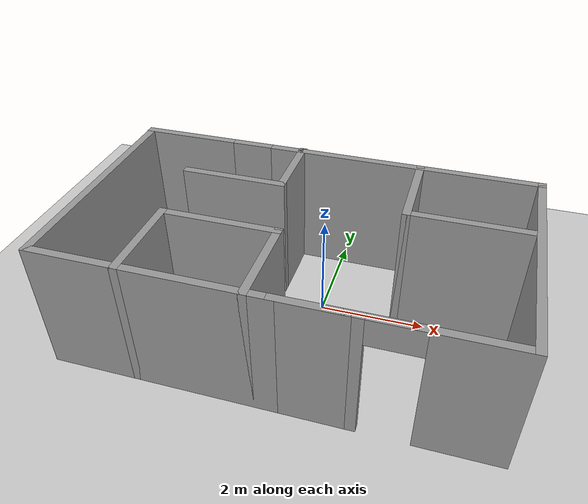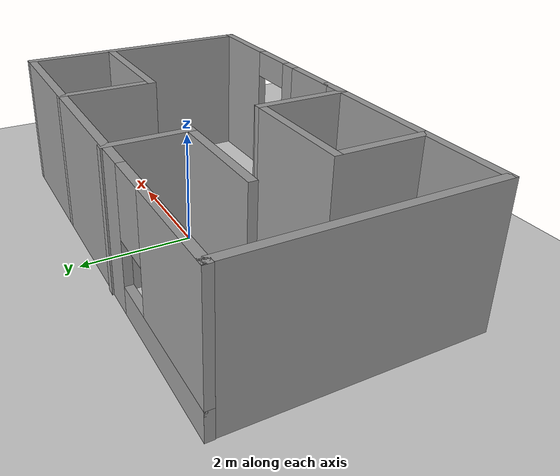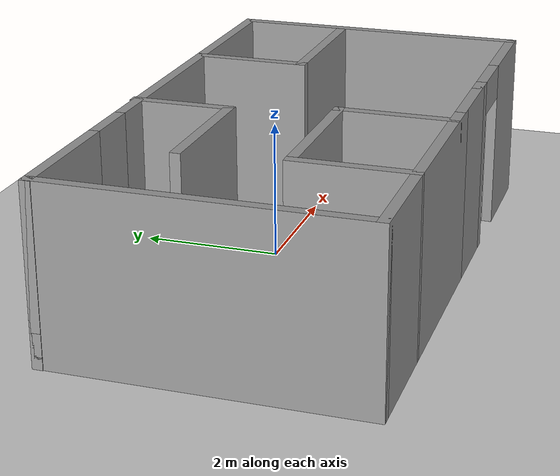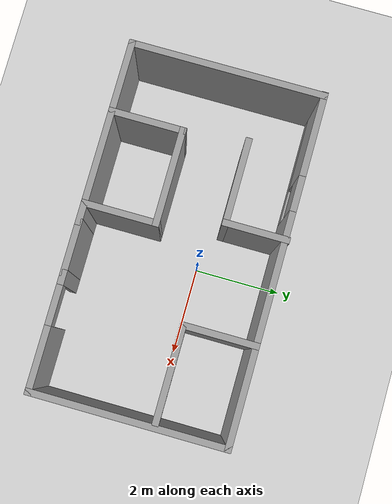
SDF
<sdf version="1.7">
 <world name="default">
  <light name="sun" type="directional">
   <pose>0 0 10 0 -0 0</pose>
   <diffuse>0.8 0.8 0.8 1</diffuse>
   <specular>0.2 0.2 0.2 1</specular>
   <attenuation>
    <range>1000</range>
    <constant>0.9</constant>
    <linear>0.01</linear>
    <quadratic>0.001</quadratic>
   </attenuation>
   <direction>-0.5 0.1 -0.9</direction>
   <spot><inner_angle>0</inner_angle><outer_angle>0</outer_angle><falloff>0</falloff></spot>
  </light>
  <model name="ground_plane">
   <static>1</static>
   <link name="link">
    <collision name="collision">
     <geometry><plane><normal>0 0 1</normal><size>100 100</size></plane></geometry>
     <surface><friction><ode><mu>100</mu><mu2>50</mu2></ode></friction></surface>
    </collision>
    <visual name="visual">
     <cast_shadows>0</cast_shadows>
     <geometry><plane><normal>0 0 1</normal><size>100 100</size></plane></geometry>
     <material>
      <script><uri>file://media/materials/scripts/gazebo.material</uri><name>Gazebo/Grey</name></script>
     </material>
    </visual>
   </link>
  </model>
  <gravity>0 0 -9.8</gravity>
  <magnetic_field>6e-06 2.3e-05 -4.2e-05</magnetic_field>
  <atmosphere type="adiabatic"/>
  <physics type="ode">
   <max_step_size>0.001</max_step_size>
   <real_time_factor>1</real_time_factor>
   <real_time_update_rate>1000</real_time_update_rate>
  </physics>
  <scene><ambient>0.4 0.4 0.4 1</ambient><background>0.7 0.7 0.7 1</background><shadows>1</shadows></scene>
  <audio><device>default</device></audio>
  <spherical_coordinates>
   <surface_model>EARTH_WGS84</surface_model>
   <latitude_deg>0</latitude_deg>
   <longitude_deg>0</longitude_deg>
   <elevation>0</elevation>
   <heading_deg>0</heading_deg>
  </spherical_coordinates>
  <model name="room">
   <pose>1.10165 0.548671 0 0 -0 0</pose>
   <link name="Wall_0">
    <pose>-1.3825 1.1125 0 0 -0 3.14159</pose>
    <visual name="Wall_0_Visual_0">
     <pose>-1.3625 0 1.25 0 -0 0</pose>
     <geometry><box><size>5.275 0.15 2.5</size></box></geometry>
     <material>
      <script><uri>file://media/materials/scripts/gazebo.material</uri><name>Gazebo/Grey</name></script>
      <ambient>1 1 1 1</ambient>
     </material>
     <meta><layer>0</layer></meta>
    </visual>
    <collision name="Wall_0_Collision_0">
     <geometry><box><size>5.275 0.15 2.5</size></box></geometry>
     <pose>-1.3625 0 1.25 0 -0 0</pose>
    </collision>
    <visual name="Wall_0_Visual_1">
     <pose>2.6375 0 0.25 0 -0 0</pose>
     <geometry><box><size>2.725 0.15 0.5</size></box></geometry>
     <material>
      <script><uri>file://media/materials/scripts/gazebo.material</uri><name>Gazebo/Grey</name></script>
      <ambient>1 1 1 1</ambient>
     </material>
     <meta><layer>0</layer></meta>
    </visual>
    <collision name="Wall_0_Collision_1">
     <geometry><box><size>2.725 0.15 0.5</size></box></geometry>
     <pose>2.6375 0 0.25 0 -0 0</pose>
    </collision>
    <visual name="Wall_0_Visual_2">
     <pose>3.0375 0 1.5 0 -0 0</pose>
     <geometry><box><size>1.925 0.15 2</size></box></geometry>
     <material>
      <script><uri>file://media/materials/scripts/gazebo.material</uri><name>Gazebo/Grey</name></script>
      <ambient>1 1 1 1</ambient>
     </material>
     <meta><layer>0</layer></meta>
    </visual>
    <collision name="Wall_0_Collision_2">
     <geometry><box><size>1.925 0.15 2</size></box></geometry>
     <pose>3.0375 0 1.5 0 -0 0</pose>
    </collision>
    <visual name="Wall_0_Visual_3">
     <pose>1.675 0 1.9 0 -0 0</pose>
     <geometry><box><size>0.8 0.15 1.2</size></box></geometry>
     <material>
      <script><uri>file://media/materials/scripts/gazebo.material</uri><name>Gazebo/Grey</name></script>
      <ambient>1 1 1 1</ambient>
     </material>
     <meta><layer>0</layer></meta>
    </visual>
    <collision name="Wall_0_Collision_3">
     <geometry><box><size>0.8 0.15 1.2</size></box></geometry>
     <pose>1.675 0 1.9 0 -0 0</pose>
    </collision>
   </link>
   <link name="Wall_1">
    <collision name="Wall_1_Collision">
     <geometry><box><size>0.16 0.15 2.5</size></box></geometry>
     <pose>0 0 1.25 0 -0 0</pose>
    </collision>
    <visual name="Wall_1_Visual">
     <pose>0 0 1.25 0 -0 0</pose>
     <geometry><box><size>0.16 0.15 2.5</size></box></geometry>
     <material>
      <script><uri>file://media/materials/scripts/gazebo.material</uri><name>Gazebo/Grey</name></script>
      <ambient>1 1 1 1</ambient>
     </material>
     <meta><layer>0</layer></meta>
    </visual>
    <pose>-5.3025 1.1125 0 0 -0 0</pose>
   </link>
   <link name="Wall_11">
    <collision name="Wall_11_Collision">
     <geometry><box><size>1.75 0.15 2.5</size></box></geometry>
     <pose>0 0 1.25 0 -0 0</pose>
    </collision>
    <visual name="Wall_11_Visual">
     <pose>0 0 1.25 0 -0 0</pose>
     <geometry><box><size>1.75 0.15 2.5</size></box></geometry>
     <material>
      <script><uri>file://media/materials/scripts/gazebo.material</uri><name>Gazebo/Grey</name></script>
      <ambient>1 1 1 1</ambient>
     </material>
     <meta><layer>0</layer></meta>
    </visual>
    <pose>-3.7175 -2.4375 0 0 -0 1.5708</pose>
   </link>
   <link name="Wall_12">
    <collision name="Wall_12_Collision">
     <geometry><box><size>2.25 0.15 2.5</size></box></geometry>
     <pose>0 0 1.25 0 -0 0</pose>
    </collision>
    <visual name="Wall_12_Visual">
     <pose>0 0 1.25 0 -0 0</pose>
     <geometry><box><size>2.25 0.15 2.5</size></box></geometry>
     <material>
      <script><uri>file://media/materials/scripts/gazebo.material</uri><name>Gazebo/Grey</name></script>
      <ambient>1 1 1 1</ambient>
     </material>
     <meta><layer>0</layer></meta>
    </visual>
    <pose>-2.6675 -1.6375 0 0 -0 0</pose>
   </link>
   <link name="Wall_13">
    <collision name="Wall_13_Collision">
     <geometry><box><size>1.75 0.15 2.5</size></box></geometry>
     <pose>0 0 1.25 0 -0 0</pose>
    </collision>
    <visual name="Wall_13_Visual">
     <pose>0 0 1.25 0 -0 0</pose>
     <geometry><box><size>1.75 0.15 2.5</size></box></geometry>
     <material>
      <script><uri>file://media/materials/scripts/gazebo.material</uri><name>Gazebo/Grey</name></script>
      <ambient>1 1 1 1</ambient>
     </material>
     <meta><layer>0</layer></meta>
    </visual>
    <pose>-1.6175 -2.4375 0 0 -0 -1.5708</pose>
   </link>
   <link name="Wall_15">
    <collision name="Wall_15_Collision">
     <geometry><box><size>1.29 0.15 2.5</size></box></geometry>
     <pose>0 0 1.25 0 -0 0</pose>
    </collision>
    <visual name="Wall_15_Visual">
     <pose>0 0 1.25 0 -0 0</pose>
     <geometry><box><size>1.29 0.15 2.5</size></box></geometry>
     <material>
      <script><uri>file://media/materials/scripts/gazebo.material</uri><name>Gazebo/Grey</name></script>
      <ambient>1 1 1 1</ambient>
     </material>
     <meta><layer>0</layer></meta>
    </visual>
    <pose>-0.6275 -3.2375 0 0 -0 3.14159</pose>
   </link>
   <link name="Wall_17">
    <collision name="Wall_17_Collision">
     <geometry><box><size>1.75 0.15 2.5</size></box></geometry>
     <pose>0 0 1.25 0 -0 0</pose>
    </collision>
    <visual name="Wall_17_Visual">
     <pose>0 0 1.25 0 -0 0</pose>
     <geometry><box><size>1.75 0.15 2.5</size></box></geometry>
     <material>
      <script><uri>file://media/materials/scripts/gazebo.material</uri><name>Gazebo/Grey</name></script>
      <ambient>1 1 1 1</ambient>
     </material>
     <meta><layer>0</layer></meta>
    </visual>
    <pose>0.3225 0.3125 0 0 -0 -1.5708</pose>
   </link>
   <link name="Wall_18">
    <collision name="Wall_18_Collision">
     <geometry><box><size>2.25 0.15 2.5</size></box></geometry>
     <pose>0 0 1.25 0 -0 0</pose>
    </collision>
    <visual name="Wall_18_Visual">
     <pose>0 0 1.25 0 -0 0</pose>
     <geometry><box><size>2.25 0.15 2.5</size></box></geometry>
     <material>
      <script><uri>file://media/materials/scripts/gazebo.material</uri><name>Gazebo/Grey</name></script>
      <ambient>1 1 1 1</ambient>
     </material>
     <meta><layer>0</layer></meta>
    </visual>
    <pose>1.3725 -0.4875 0 0 -0 0</pose>
   </link>
   <link name="Wall_2">
    <collision name="Wall_2_Collision">
     <geometry><box><size>4.5 0.15 2.5</size></box></geometry>
     <pose>0 0 1.25 0 -0 0</pose>
    </collision>
    <visual name="Wall_2_Visual">
     <pose>0 0 1.25 0 -0 0</pose>
     <geometry><box><size>4.5 0.15 2.5</size></box></geometry>
     <material>
      <script><uri>file://media/materials/scripts/gazebo.material</uri><name>Gazebo/Grey</name></script>
      <ambient>1 1 1 1</ambient>
     </material>
     <meta><layer>0</layer></meta>
    </visual>
    <pose>-5.2975 -1.0625 0 0 -0 -1.5708</pose>
   </link>
   <link name="Wall_3">
    <collision name="Wall_3_Collision">
     <geometry><box><size>4.25 0.15 2.5</size></box></geometry>
     <pose>0 0 1.25 0 -0 0</pose>
    </collision>
    <visual name="Wall_3_Visual">
     <pose>0 0 1.25 0 -0 0</pose>
     <geometry><box><size>4.25 0.15 2.5</size></box></geometry>
     <material>
      <script><uri>file://media/materials/scripts/gazebo.material</uri><name>Gazebo/Grey</name></script>
      <ambient>1 1 1 1</ambient>
     </material>
     <meta><layer>0</layer></meta>
    </visual>
    <pose>-3.2475 -3.2375 0 0 -0 0</pose>
   </link>
   <link name="Wall_5">
    <collision name="Wall_5_Collision">
     <geometry><box><size>4.5 0.15 2.5</size></box></geometry>
     <pose>0 0 1.25 0 -0 0</pose>
    </collision>
    <visual name="Wall_5_Visual">
     <pose>0 0 1.25 0 -0 0</pose>
     <geometry><box><size>4.5 0.15 2.5</size></box></geometry>
     <material>
      <script><uri>file://media/materials/scripts/gazebo.material</uri><name>Gazebo/Grey</name></script>
      <ambient>1 1 1 1</ambient>
     </material>
     <meta><layer>0</layer></meta>
    </visual>
    <pose>2.5425 -1.0625 0 0 -0 -1.5708</pose>
   </link>
   <link name="Wall_6">
    <pose>1.2425 -3.2375 0 0 -0 3.14159</pose>
    <visual name="Wall_6_Visual_0">
     <pose>-0.6175 0 1.25 0 -0 0</pose>
     <geometry><box><size>1.515 0.15 2.5</size></box></geometry>
     <material>
      <script><uri>file://media/materials/scripts/gazebo.material</uri><name>Gazebo/Grey</name></script>
      <ambient>1 1 1 1</ambient>
     </material>
     <meta><layer>0</layer></meta>
    </visual>
    <collision name="Wall_6_Collision_0">
     <geometry><box><size>1.515 0.15 2.5</size></box></geometry>
     <pose>-0.6175 0 1.25 0 -0 0</pose>
    </collision>
    <visual name="Wall_6_Visual_1">
     <pose>1.2075 0 1.25 0 -0 0</pose>
     <geometry><box><size>0.335 0.15 2.5</size></box></geometry>
     <material>
      <script><uri>file://media/materials/scripts/gazebo.material</uri><name>Gazebo/Grey</name></script>
      <ambient>1 1 1 1</ambient>
     </material>
     <meta><layer>0</layer></meta>
    </visual>
    <collision name="Wall_6_Collision_1">
     <geometry><box><size>0.335 0.15 2.5</size></box></geometry>
     <pose>1.2075 0 1.25 0 -0 0</pose>
    </collision>
    <visual name="Wall_6_Visual_2">
     <pose>0.59 0 2.25 0 -0 0</pose>
     <geometry><box><size>0.9 0.15 0.5</size></box></geometry>
     <material>
      <script><uri>file://media/materials/scripts/gazebo.material</uri><name>Gazebo/Grey</name></script>
      <ambient>1 1 1 1</ambient>
     </material>
     <meta><layer>0</layer></meta>
    </visual>
    <collision name="Wall_6_Collision_2">
     <geometry><box><size>0.9 0.15 0.5</size></box></geometry>
     <pose>0.59 0 2.25 0 -0 0</pose>
    </collision>
   </link>
   <link name="Wall_8">
    <collision name="Wall_8_Collision">
     <geometry><box><size>1.5 0.15 2.5</size></box></geometry>
     <pose>0 0 1.25 0 -0 0</pose>
    </collision>
    <visual name="Wall_8_Visual">
     <pose>0 0 1.25 0 -0 0</pose>
     <geometry><box><size>1.5 0.15 2.5</size></box></geometry>
     <material>
      <script><uri>file://media/materials/scripts/gazebo.material</uri><name>Gazebo/Grey</name></script>
      <ambient>1 1 1 1</ambient>
     </material>
     <meta><layer>0</layer></meta>
    </visual>
    <pose>-2.0275 0.4675 0 0 -0 -1.5708</pose>
   </link>
   <link name="Wall_9">
    <collision name="Wall_9_Collision">
     <geometry><box><size>2 0.15 2.5</size></box></geometry>
     <pose>0 0 1.25 0 -0 0</pose>
    </collision>
    <visual name="Wall_9_Visual">
     <pose>0 0 1.25 0 -0 0</pose>
     <geometry><box><size>2 0.15 2.5</size></box></geometry>
     <material>
      <script><uri>file://media/materials/scripts/gazebo.material</uri><name>Gazebo/Grey</name></script>
      <ambient>1 1 1 1</ambient>
     </material>
     <meta><layer>0</layer></meta>
    </visual>
    <pose>-2.9525 -0.2075 0 0 -0 3.14159</pose>
   </link>
   <static>1</static>
  </model>
 </world>
</sdf>
